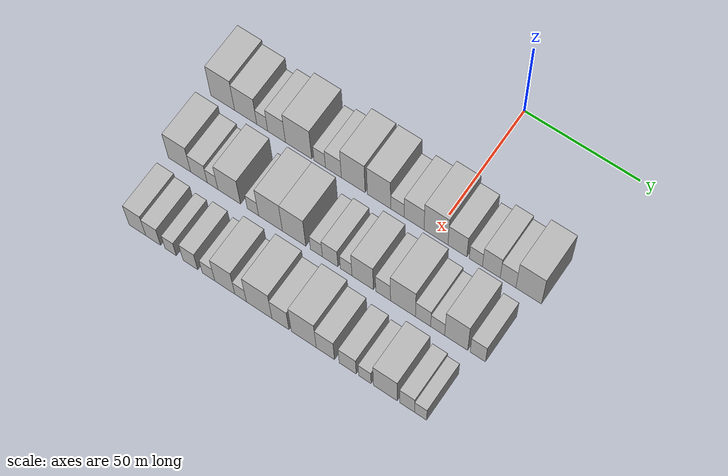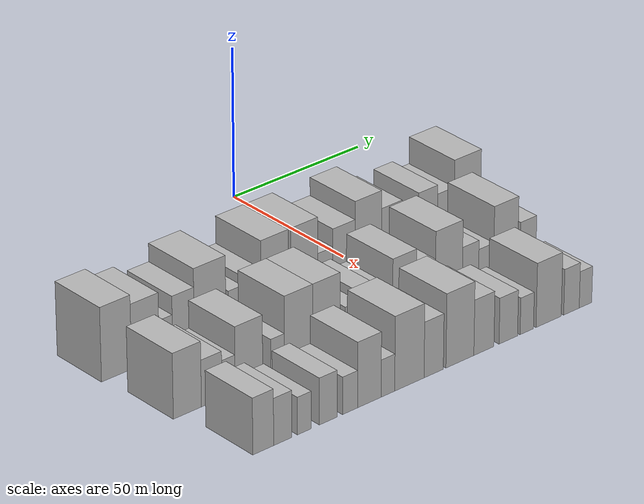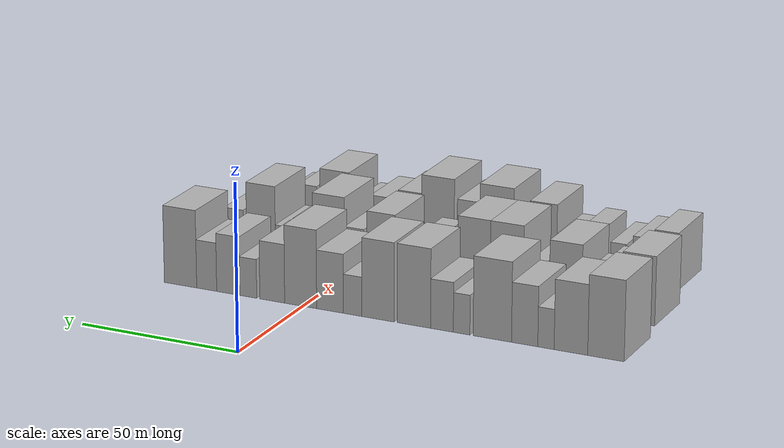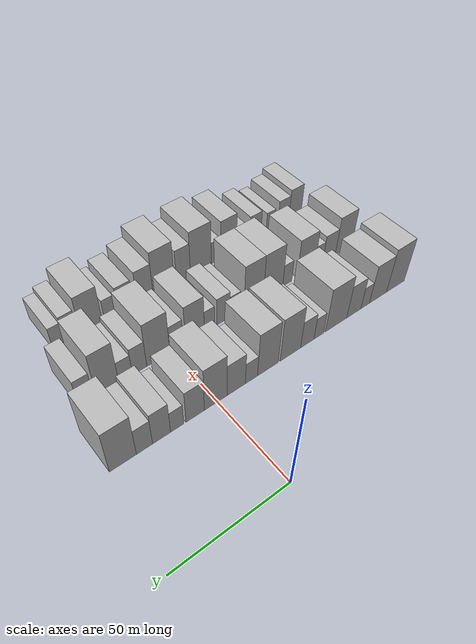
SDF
<sdf version="1.6">
 <world name="default">
  <model name="building_25">
   <static>1</static>
   <pose>50.0000 -94.0179 0 0.000000 0.000000 0.000000</pose>
   <link name="link">
    <pose>0 0 12.00 0 0 0</pose>
    <collision name="collision"><geometry><box><size>20.0000 10.8684 24.0000</size></box></geometry></collision>
    <visual name="visual">
     <cast_shadows>0</cast_shadows>
     <geometry><box><size>20.0000 10.8684 24.0000</size></box></geometry>
     <material>
      <script>
       <uri>model://HANNAS_wall/materials/scripts</uri>
       <uri>model://HANNAS_wall/materials/textures</uri>
       <name>vrc/HANNAS_wall</name>
      </script>
     </material>
    </visual>
   </link>
  </model>
  <model name="building_26">
   <static>1</static>
   <pose>50.0000 -83.5271 0 0.000000 0.000000 0.000000</pose>
   <link name="link">
    <pose>0 0 10.50 0 0 0</pose>
    <collision name="collision"><geometry><box><size>20.0000 10.1133 21.0000</size></box></geometry></collision>
    <visual name="visual">
     <cast_shadows>0</cast_shadows>
     <geometry><box><size>20.0000 10.1133 21.0000</size></box></geometry>
     <material>
      <script>
       <uri>model://HANNAS_wall/materials/scripts</uri>
       <uri>model://HANNAS_wall/materials/textures</uri>
       <name>vrc/HANNAS_wall</name>
      </script>
     </material>
    </visual>
   </link>
  </model>
  <model name="building_27">
   <static>1</static>
   <pose>50.0000 -75.9997 0 0.000000 0.000000 0.000000</pose>
   <link name="link">
    <pose>0 0 6.00 0 0 0</pose>
    <collision name="collision"><geometry><box><size>20.0000 4.9413 12.0000</size></box></geometry></collision>
    <visual name="visual">
     <cast_shadows>0</cast_shadows>
     <geometry><box><size>20.0000 4.9413 12.0000</size></box></geometry>
     <material>
      <script>
       <uri>model://HANNAS_wall/materials/scripts</uri>
       <uri>model://HANNAS_wall/materials/textures</uri>
       <name>vrc/HANNAS_wall</name>
      </script>
     </material>
    </visual>
   </link>
  </model>
  <model name="building_28">
   <static>1</static>
   <pose>50.0000 -69.5261 0 0.000000 0.000000 0.000000</pose>
   <link name="link">
    <pose>0 0 9.00 0 0 0</pose>
    <collision name="collision"><geometry><box><size>20.0000 8.0060 18.0000</size></box></geometry></collision>
    <visual name="visual">
     <cast_shadows>0</cast_shadows>
     <geometry><box><size>20.0000 8.0060 18.0000</size></box></geometry>
     <material>
      <script>
       <uri>model://HANNAS_wall/materials/scripts</uri>
       <uri>model://HANNAS_wall/materials/textures</uri>
       <name>vrc/HANNAS_wall</name>
      </script>
     </material>
    </visual>
   </link>
  </model>
  <model name="building_29">
   <static>1</static>
   <pose>50.0000 -59.6290 0 0.000000 0.000000 0.000000</pose>
   <link name="link">
    <pose>0 0 12.00 0 0 0</pose>
    <collision name="collision"><geometry><box><size>20.0000 11.7882 24.0000</size></box></geometry></collision>
    <visual name="visual">
     <cast_shadows>0</cast_shadows>
     <geometry><box><size>20.0000 11.7882 24.0000</size></box></geometry>
     <material>
      <script>
       <uri>model://HANNAS_wall/materials/scripts</uri>
       <uri>model://HANNAS_wall/materials/textures</uri>
       <name>vrc/HANNAS_wall</name>
      </script>
     </material>
    </visual>
   </link>
  </model>
  <model name="building_30">
   <static>1</static>
   <pose>50.0000 -50.1705 0 0.000000 0.000000 0.000000</pose>
   <link name="link">
    <pose>0 0 6.00 0 0 0</pose>
    <collision name="collision"><geometry><box><size>20.0000 5.1288 12.0000</size></box></geometry></collision>
    <visual name="visual">
     <cast_shadows>0</cast_shadows>
     <geometry><box><size>20.0000 5.1288 12.0000</size></box></geometry>
     <material>
      <script>
       <uri>model://HANNAS_wall/materials/scripts</uri>
       <uri>model://HANNAS_wall/materials/textures</uri>
       <name>vrc/HANNAS_wall</name>
      </script>
     </material>
    </visual>
   </link>
  </model>
  <model name="building_31">
   <static>1</static>
   <pose>50.0000 -44.0723 0 0.000000 0.000000 0.000000</pose>
   <link name="link">
    <pose>0 0 7.50 0 0 0</pose>
    <collision name="collision"><geometry><box><size>20.0000 7.0677 15.0000</size></box></geometry></collision>
    <visual name="visual">
     <cast_shadows>0</cast_shadows>
     <geometry><box><size>20.0000 7.0677 15.0000</size></box></geometry>
     <material>
      <script>
       <uri>model://HANNAS_wall/materials/scripts</uri>
       <uri>model://HANNAS_wall/materials/textures</uri>
       <name>vrc/HANNAS_wall</name>
      </script>
     </material>
    </visual>
   </link>
  </model>
  <model name="building_32">
   <static>1</static>
   <pose>50.0000 -35.3034 0 0.000000 0.000000 0.000000</pose>
   <link name="link">
    <pose>0 0 12.00 0 0 0</pose>
    <collision name="collision"><geometry><box><size>20.0000 10.4701 24.0000</size></box></geometry></collision>
    <visual name="visual">
     <cast_shadows>0</cast_shadows>
     <geometry><box><size>20.0000 10.4701 24.0000</size></box></geometry>
     <material>
      <script>
       <uri>model://HANNAS_wall/materials/scripts</uri>
       <uri>model://HANNAS_wall/materials/textures</uri>
       <name>vrc/HANNAS_wall</name>
      </script>
     </material>
    </visual>
   </link>
  </model>
  <model name="building_33">
   <static>1</static>
   <pose>50.0000 -23.9722 0 0.000000 0.000000 0.000000</pose>
   <link name="link">
    <pose>0 0 12.00 0 0 0</pose>
    <collision name="collision"><geometry><box><size>20.0000 10.1921 24.0000</size></box></geometry></collision>
    <visual name="visual">
     <cast_shadows>0</cast_shadows>
     <geometry><box><size>20.0000 10.1921 24.0000</size></box></geometry>
     <material>
      <script>
       <uri>model://HANNAS_wall/materials/scripts</uri>
       <uri>model://HANNAS_wall/materials/textures</uri>
       <name>vrc/HANNAS_wall</name>
      </script>
     </material>
    </visual>
   </link>
  </model>
  <model name="building_34">
   <static>1</static>
   <pose>50.0000 -15.9255 0 0.000000 0.000000 0.000000</pose>
   <link name="link">
    <pose>0 0 6.00 0 0 0</pose>
    <collision name="collision"><geometry><box><size>20.0000 5.9014 12.0000</size></box></geometry></collision>
    <visual name="visual">
     <cast_shadows>0</cast_shadows>
     <geometry><box><size>20.0000 5.9014 12.0000</size></box></geometry>
     <material>
      <script>
       <uri>model://HANNAS_wall/materials/scripts</uri>
       <uri>model://HANNAS_wall/materials/textures</uri>
       <name>vrc/HANNAS_wall</name>
      </script>
     </material>
    </visual>
   </link>
  </model>
  <model name="building_35">
   <static>1</static>
   <pose>50.0000 -8.6745 0 0.000000 0.000000 0.000000</pose>
   <link name="link">
    <pose>0 0 9.00 0 0 0</pose>
    <collision name="collision"><geometry><box><size>20.0000 8.6005 18.0000</size></box></geometry></collision>
    <visual name="visual">
     <cast_shadows>0</cast_shadows>
     <geometry><box><size>20.0000 8.6005 18.0000</size></box></geometry>
     <material>
      <script>
       <uri>model://HANNAS_wall/materials/scripts</uri>
       <uri>model://HANNAS_wall/materials/textures</uri>
       <name>vrc/HANNAS_wall</name>
      </script>
     </material>
    </visual>
   </link>
  </model>
  <model name="building_36">
   <static>1</static>
   <pose>50.0000 0.7981 0 0.000000 0.000000 0.000000</pose>
   <link name="link">
    <pose>0 0 12.00 0 0 0</pose>
    <collision name="collision"><geometry><box><size>20.0000 10.3448 24.0000</size></box></geometry></collision>
    <visual name="visual">
     <cast_shadows>0</cast_shadows>
     <geometry><box><size>20.0000 10.3448 24.0000</size></box></geometry>
     <material>
      <script>
       <uri>model://HANNAS_wall/materials/scripts</uri>
       <uri>model://HANNAS_wall/materials/textures</uri>
       <name>vrc/HANNAS_wall</name>
      </script>
     </material>
    </visual>
   </link>
  </model>
  <model name="building_37">
   <static>1</static>
   <pose>50.0000 10.0276 0 0.000000 0.000000 0.000000</pose>
   <link name="link">
    <pose>0 0 9.00 0 0 0</pose>
    <collision name="collision"><geometry><box><size>20.0000 8.1141 18.0000</size></box></geometry></collision>
    <visual name="visual">
     <cast_shadows>0</cast_shadows>
     <geometry><box><size>20.0000 8.1141 18.0000</size></box></geometry>
     <material>
      <script>
       <uri>model://HANNAS_wall/materials/scripts</uri>
       <uri>model://HANNAS_wall/materials/textures</uri>
       <name>vrc/HANNAS_wall</name>
      </script>
     </material>
    </visual>
   </link>
  </model>
  <model name="building_38">
   <static>1</static>
   <pose>50.0000 17.8904 0 0.000000 0.000000 0.000000</pose>
   <link name="link">
    <pose>0 0 6.00 0 0 0</pose>
    <collision name="collision"><geometry><box><size>20.0000 5.6115 12.0000</size></box></geometry></collision>
    <visual name="visual">
     <cast_shadows>0</cast_shadows>
     <geometry><box><size>20.0000 5.6115 12.0000</size></box></geometry>
     <material>
      <script>
       <uri>model://HANNAS_wall/materials/scripts</uri>
       <uri>model://HANNAS_wall/materials/textures</uri>
       <name>vrc/HANNAS_wall</name>
      </script>
     </material>
    </visual>
   </link>
  </model>
  <model name="building_39">
   <static>1</static>
   <pose>50.0000 24.4787 0 0.000000 0.000000 0.000000</pose>
   <link name="link">
    <pose>0 0 9.00 0 0 0</pose>
    <collision name="collision"><geometry><box><size>20.0000 7.5652 18.0000</size></box></geometry></collision>
    <visual name="visual">
     <cast_shadows>0</cast_shadows>
     <geometry><box><size>20.0000 7.5652 18.0000</size></box></geometry>
     <material>
      <script>
       <uri>model://HANNAS_wall/materials/scripts</uri>
       <uri>model://HANNAS_wall/materials/textures</uri>
       <name>vrc/HANNAS_wall</name>
      </script>
     </material>
    </visual>
   </link>
  </model>
  <model name="building_40">
   <static>1</static>
   <pose>50.0000 31.5845 0 0.000000 0.000000 0.000000</pose>
   <link name="link">
    <pose>0 0 7.50 0 0 0</pose>
    <collision name="collision"><geometry><box><size>20.0000 6.6463 15.0000</size></box></geometry></collision>
    <visual name="visual">
     <cast_shadows>0</cast_shadows>
     <geometry><box><size>20.0000 6.6463 15.0000</size></box></geometry>
     <material>
      <script>
       <uri>model://HANNAS_wall/materials/scripts</uri>
       <uri>model://HANNAS_wall/materials/textures</uri>
       <name>vrc/HANNAS_wall</name>
      </script>
     </material>
    </visual>
   </link>
  </model>
  <model name="building_41">
   <static>1</static>
   <pose>50.0000 40.3000 0 0.000000 0.000000 0.000000</pose>
   <link name="link">
    <pose>0 0 12.00 0 0 0</pose>
    <collision name="collision"><geometry><box><size>20.0000 10.7847 24.0000</size></box></geometry></collision>
    <visual name="visual">
     <cast_shadows>0</cast_shadows>
     <geometry><box><size>20.0000 10.7847 24.0000</size></box></geometry>
     <material>
      <script>
       <uri>model://HANNAS_wall/materials/scripts</uri>
       <uri>model://HANNAS_wall/materials/textures</uri>
       <name>vrc/HANNAS_wall</name>
      </script>
     </material>
    </visual>
   </link>
  </model>
  <model name="building_103">
   <static>1</static>
   <pose>79.0000 -92.2135 0 0.000000 0.000000 0.000000</pose>
   <link name="link">
    <pose>0 0 10.50 0 0 0</pose>
    <collision name="collision"><geometry><box><size>20.0000 10.1200 21.0000</size></box></geometry></collision>
    <visual name="visual">
     <cast_shadows>0</cast_shadows>
     <geometry><box><size>20.0000 10.1200 21.0000</size></box></geometry>
     <material>
      <script>
       <uri>model://HANNAS_wall/materials/scripts</uri>
       <uri>model://HANNAS_wall/materials/textures</uri>
       <name>vrc/HANNAS_wall</name>
      </script>
     </material>
    </visual>
   </link>
  </model>
  <model name="building_104">
   <static>1</static>
   <pose>79.0000 -83.4157 0 0.000000 0.000000 0.000000</pose>
   <link name="link">
    <pose>0 0 7.50 0 0 0</pose>
    <collision name="collision"><geometry><box><size>20.0000 7.4757 15.0000</size></box></geometry></collision>
    <visual name="visual">
     <cast_shadows>0</cast_shadows>
     <geometry><box><size>20.0000 7.4757 15.0000</size></box></geometry>
     <material>
      <script>
       <uri>model://HANNAS_wall/materials/scripts</uri>
       <uri>model://HANNAS_wall/materials/textures</uri>
       <name>vrc/HANNAS_wall</name>
      </script>
     </material>
    </visual>
   </link>
  </model>
  <model name="building_105">
   <static>1</static>
   <pose>79.0000 -77.2676 0 0.000000 0.000000 0.000000</pose>
   <link name="link">
    <pose>0 0 6.00 0 0 0</pose>
    <collision name="collision"><geometry><box><size>20.0000 4.8206 12.0000</size></box></geometry></collision>
    <visual name="visual">
     <cast_shadows>0</cast_shadows>
     <geometry><box><size>20.0000 4.8206 12.0000</size></box></geometry>
     <material>
      <script>
       <uri>model://HANNAS_wall/materials/scripts</uri>
       <uri>model://HANNAS_wall/materials/textures</uri>
       <name>vrc/HANNAS_wall</name>
      </script>
     </material>
    </visual>
   </link>
  </model>
  <model name="building_106">
   <static>1</static>
   <pose>79.0000 -69.7898 0 0.000000 0.000000 0.000000</pose>
   <link name="link">
    <pose>0 0 10.50 0 0 0</pose>
    <collision name="collision"><geometry><box><size>20.0000 10.1350 21.0000</size></box></geometry></collision>
    <visual name="visual">
     <cast_shadows>0</cast_shadows>
     <geometry><box><size>20.0000 10.1350 21.0000</size></box></geometry>
     <material>
      <script>
       <uri>model://HANNAS_wall/materials/scripts</uri>
       <uri>model://HANNAS_wall/materials/textures</uri>
       <name>vrc/HANNAS_wall</name>
      </script>
     </material>
    </visual>
   </link>
  </model>
  <model name="building_107">
   <static>1</static>
   <pose>79.0000 -59.1889 0 0.000000 0.000000 0.000000</pose>
   <link name="link">
    <pose>0 0 6.00 0 0 0</pose>
    <collision name="collision"><geometry><box><size>20.0000 5.0666 12.0000</size></box></geometry></collision>
    <visual name="visual">
     <cast_shadows>0</cast_shadows>
     <geometry><box><size>20.0000 5.0666 12.0000</size></box></geometry>
     <material>
      <script>
       <uri>model://HANNAS_wall/materials/scripts</uri>
       <uri>model://HANNAS_wall/materials/textures</uri>
       <name>vrc/HANNAS_wall</name>
      </script>
     </material>
    </visual>
   </link>
  </model>
  <model name="building_108">
   <static>1</static>
   <pose>79.0000 -51.3912 0 0.000000 0.000000 0.000000</pose>
   <link name="link">
    <pose>0 0 12.00 0 0 0</pose>
    <collision name="collision"><geometry><box><size>20.0000 10.5289 24.0000</size></box></geometry></collision>
    <visual name="visual">
     <cast_shadows>0</cast_shadows>
     <geometry><box><size>20.0000 10.5289 24.0000</size></box></geometry>
     <material>
      <script>
       <uri>model://HANNAS_wall/materials/scripts</uri>
       <uri>model://HANNAS_wall/materials/textures</uri>
       <name>vrc/HANNAS_wall</name>
      </script>
     </material>
    </visual>
   </link>
  </model>
  <model name="building_109">
   <static>1</static>
   <pose>79.0000 -40.9770 0 0.000000 0.000000 0.000000</pose>
   <link name="link">
    <pose>0 0 12.00 0 0 0</pose>
    <collision name="collision"><geometry><box><size>20.0000 10.2996 24.0000</size></box></geometry></collision>
    <visual name="visual">
     <cast_shadows>0</cast_shadows>
     <geometry><box><size>20.0000 10.2996 24.0000</size></box></geometry>
     <material>
      <script>
       <uri>model://HANNAS_wall/materials/scripts</uri>
       <uri>model://HANNAS_wall/materials/textures</uri>
       <name>vrc/HANNAS_wall</name>
      </script>
     </material>
    </visual>
   </link>
  </model>
  <model name="building_110">
   <static>1</static>
   <pose>79.0000 -31.1936 0 0.000000 0.000000 0.000000</pose>
   <link name="link">
    <pose>0 0 6.00 0 0 0</pose>
    <collision name="collision"><geometry><box><size>20.0000 5.2672 12.0000</size></box></geometry></collision>
    <visual name="visual">
     <cast_shadows>0</cast_shadows>
     <geometry><box><size>20.0000 5.2672 12.0000</size></box></geometry>
     <material>
      <script>
       <uri>model://HANNAS_wall/materials/scripts</uri>
       <uri>model://HANNAS_wall/materials/textures</uri>
       <name>vrc/HANNAS_wall</name>
      </script>
     </material>
    </visual>
   </link>
  </model>
  <model name="building_111">
   <static>1</static>
   <pose>79.0000 -25.1725 0 0.000000 0.000000 0.000000</pose>
   <link name="link">
    <pose>0 0 7.50 0 0 0</pose>
    <collision name="collision"><geometry><box><size>20.0000 6.7749 15.0000</size></box></geometry></collision>
    <visual name="visual">
     <cast_shadows>0</cast_shadows>
     <geometry><box><size>20.0000 6.7749 15.0000</size></box></geometry>
     <material>
      <script>
       <uri>model://HANNAS_wall/materials/scripts</uri>
       <uri>model://HANNAS_wall/materials/textures</uri>
       <name>vrc/HANNAS_wall</name>
      </script>
     </material>
    </visual>
   </link>
  </model>
  <model name="building_112">
   <static>1</static>
   <pose>79.0000 -18.2454 0 0.000000 0.000000 0.000000</pose>
   <link name="link">
    <pose>0 0 6.00 0 0 0</pose>
    <collision name="collision"><geometry><box><size>20.0000 5.0794 12.0000</size></box></geometry></collision>
    <visual name="visual">
     <cast_shadows>0</cast_shadows>
     <geometry><box><size>20.0000 5.0794 12.0000</size></box></geometry>
     <material>
      <script>
       <uri>model://HANNAS_wall/materials/scripts</uri>
       <uri>model://HANNAS_wall/materials/textures</uri>
       <name>vrc/HANNAS_wall</name>
      </script>
     </material>
    </visual>
   </link>
  </model>
  <model name="building_113">
   <static>1</static>
   <pose>79.0000 -11.0957 0 0.000000 0.000000 0.000000</pose>
   <link name="link">
    <pose>0 0 10.50 0 0 0</pose>
    <collision name="collision"><geometry><box><size>20.0000 9.2200 21.0000</size></box></geometry></collision>
    <visual name="visual">
     <cast_shadows>0</cast_shadows>
     <geometry><box><size>20.0000 9.2200 21.0000</size></box></geometry>
     <material>
      <script>
       <uri>model://HANNAS_wall/materials/scripts</uri>
       <uri>model://HANNAS_wall/materials/textures</uri>
       <name>vrc/HANNAS_wall</name>
      </script>
     </material>
    </visual>
   </link>
  </model>
  <model name="building_114">
   <static>1</static>
   <pose>79.0000 -2.3140 0 0.000000 0.000000 0.000000</pose>
   <link name="link">
    <pose>0 0 7.50 0 0 0</pose>
    <collision name="collision"><geometry><box><size>20.0000 6.3435 15.0000</size></box></geometry></collision>
    <visual name="visual">
     <cast_shadows>0</cast_shadows>
     <geometry><box><size>20.0000 6.3435 15.0000</size></box></geometry>
     <material>
      <script>
       <uri>model://HANNAS_wall/materials/scripts</uri>
       <uri>model://HANNAS_wall/materials/textures</uri>
       <name>vrc/HANNAS_wall</name>
      </script>
     </material>
    </visual>
   </link>
  </model>
  <model name="building_115">
   <static>1</static>
   <pose>79.0000 6.1742 0 0.000000 0.000000 0.000000</pose>
   <link name="link">
    <pose>0 0 12.00 0 0 0</pose>
    <collision name="collision"><geometry><box><size>20.0000 10.6329 24.0000</size></box></geometry></collision>
    <visual name="visual">
     <cast_shadows>0</cast_shadows>
     <geometry><box><size>20.0000 10.6329 24.0000</size></box></geometry>
     <material>
      <script>
       <uri>model://HANNAS_wall/materials/scripts</uri>
       <uri>model://HANNAS_wall/materials/textures</uri>
       <name>vrc/HANNAS_wall</name>
      </script>
     </material>
    </visual>
   </link>
  </model>
  <model name="building_116">
   <static>1</static>
   <pose>79.0000 14.7125 0 0.000000 0.000000 0.000000</pose>
   <link name="link">
    <pose>0 0 7.50 0 0 0</pose>
    <collision name="collision"><geometry><box><size>20.0000 6.4437 15.0000</size></box></geometry></collision>
    <visual name="visual">
     <cast_shadows>0</cast_shadows>
     <geometry><box><size>20.0000 6.4437 15.0000</size></box></geometry>
     <material>
      <script>
       <uri>model://HANNAS_wall/materials/scripts</uri>
       <uri>model://HANNAS_wall/materials/textures</uri>
       <name>vrc/HANNAS_wall</name>
      </script>
     </material>
    </visual>
   </link>
  </model>
  <model name="building_117">
   <static>1</static>
   <pose>79.0000 20.9096 0 0.000000 0.000000 0.000000</pose>
   <link name="link">
    <pose>0 0 6.00 0 0 0</pose>
    <collision name="collision"><geometry><box><size>20.0000 5.9505 12.0000</size></box></geometry></collision>
    <visual name="visual">
     <cast_shadows>0</cast_shadows>
     <geometry><box><size>20.0000 5.9505 12.0000</size></box></geometry>
     <material>
      <script>
       <uri>model://HANNAS_wall/materials/scripts</uri>
       <uri>model://HANNAS_wall/materials/textures</uri>
       <name>vrc/HANNAS_wall</name>
      </script>
     </material>
    </visual>
   </link>
  </model>
  <model name="building_118">
   <static>1</static>
   <pose>79.0000 28.7317 0 0.000000 0.000000 0.000000</pose>
   <link name="link">
    <pose>0 0 12.00 0 0 0</pose>
    <collision name="collision"><geometry><box><size>20.0000 9.6936 24.0000</size></box></geometry></collision>
    <visual name="visual">
     <cast_shadows>0</cast_shadows>
     <geometry><box><size>20.0000 9.6936 24.0000</size></box></geometry>
     <material>
      <script>
       <uri>model://HANNAS_wall/materials/scripts</uri>
       <uri>model://HANNAS_wall/materials/textures</uri>
       <name>vrc/HANNAS_wall</name>
      </script>
     </material>
    </visual>
   </link>
  </model>
  <model name="building_119">
   <static>1</static>
   <pose>79.0000 37.7924 0 0.000000 0.000000 0.000000</pose>
   <link name="link">
    <pose>0 0 7.50 0 0 0</pose>
    <collision name="collision"><geometry><box><size>20.0000 6.4278 15.0000</size></box></geometry></collision>
    <visual name="visual">
     <cast_shadows>0</cast_shadows>
     <geometry><box><size>20.0000 6.4278 15.0000</size></box></geometry>
     <material>
      <script>
       <uri>model://HANNAS_wall/materials/scripts</uri>
       <uri>model://HANNAS_wall/materials/textures</uri>
       <name>vrc/HANNAS_wall</name>
      </script>
     </material>
    </visual>
   </link>
  </model>
  <model name="building_178">
   <static>1</static>
   <pose>108.0000 -89.3599 0 0.000000 0.000000 0.000000</pose>
   <link name="link">
    <pose>0 0 9.00 0 0 0</pose>
    <collision name="collision"><geometry><box><size>20.0000 7.5112 18.0000</size></box></geometry></collision>
    <visual name="visual">
     <cast_shadows>0</cast_shadows>
     <geometry><box><size>20.0000 7.5112 18.0000</size></box></geometry>
     <material>
      <script>
       <uri>model://HANNAS_wall/materials/scripts</uri>
       <uri>model://HANNAS_wall/materials/textures</uri>
       <name>vrc/HANNAS_wall</name>
      </script>
     </material>
    </visual>
   </link>
  </model>
  <model name="building_179">
   <static>1</static>
   <pose>108.0000 -82.2894 0 0.000000 0.000000 0.000000</pose>
   <link name="link">
    <pose>0 0 7.50 0 0 0</pose>
    <collision name="collision"><geometry><box><size>20.0000 6.6297 15.0000</size></box></geometry></collision>
    <visual name="visual">
     <cast_shadows>0</cast_shadows>
     <geometry><box><size>20.0000 6.6297 15.0000</size></box></geometry>
     <material>
      <script>
       <uri>model://HANNAS_wall/materials/scripts</uri>
       <uri>model://HANNAS_wall/materials/textures</uri>
       <name>vrc/HANNAS_wall</name>
      </script>
     </material>
    </visual>
   </link>
  </model>
  <model name="building_180">
   <static>1</static>
   <pose>108.0000 -74.4618 0 0.000000 0.000000 0.000000</pose>
   <link name="link">
    <pose>0 0 6.00 0 0 0</pose>
    <collision name="collision"><geometry><box><size>20.0000 5.0254 12.0000</size></box></geometry></collision>
    <visual name="visual">
     <cast_shadows>0</cast_shadows>
     <geometry><box><size>20.0000 5.0254 12.0000</size></box></geometry>
     <material>
      <script>
       <uri>model://HANNAS_wall/materials/scripts</uri>
       <uri>model://HANNAS_wall/materials/textures</uri>
       <name>vrc/HANNAS_wall</name>
      </script>
     </material>
    </visual>
   </link>
  </model>
  <model name="building_181">
   <static>1</static>
   <pose>108.0000 -65.6889 0 0.000000 0.000000 0.000000</pose>
   <link name="link">
    <pose>0 0 7.50 0 0 0</pose>
    <collision name="collision"><geometry><box><size>20.0000 6.5204 15.0000</size></box></geometry></collision>
    <visual name="visual">
     <cast_shadows>0</cast_shadows>
     <geometry><box><size>20.0000 6.5204 15.0000</size></box></geometry>
     <material>
      <script>
       <uri>model://HANNAS_wall/materials/scripts</uri>
       <uri>model://HANNAS_wall/materials/textures</uri>
       <name>vrc/HANNAS_wall</name>
      </script>
     </material>
    </visual>
   </link>
  </model>
  <model name="building_182">
   <static>1</static>
   <pose>108.0000 -57.6493 0 0.000000 0.000000 0.000000</pose>
   <link name="link">
    <pose>0 0 6.00 0 0 0</pose>
    <collision name="collision"><geometry><box><size>20.0000 5.5589 12.0000</size></box></geometry></collision>
    <visual name="visual">
     <cast_shadows>0</cast_shadows>
     <geometry><box><size>20.0000 5.5589 12.0000</size></box></geometry>
     <material>
      <script>
       <uri>model://HANNAS_wall/materials/scripts</uri>
       <uri>model://HANNAS_wall/materials/textures</uri>
       <name>vrc/HANNAS_wall</name>
      </script>
     </material>
    </visual>
   </link>
  </model>
  <model name="building_183">
   <static>1</static>
   <pose>108.0000 -50.4737 0 0.000000 0.000000 0.000000</pose>
   <link name="link">
    <pose>0 0 10.50 0 0 0</pose>
    <collision name="collision"><geometry><box><size>20.0000 8.7923 21.0000</size></box></geometry></collision>
    <visual name="visual">
     <cast_shadows>0</cast_shadows>
     <geometry><box><size>20.0000 8.7923 21.0000</size></box></geometry>
     <material>
      <script>
       <uri>model://HANNAS_wall/materials/scripts</uri>
       <uri>model://HANNAS_wall/materials/textures</uri>
       <name>vrc/HANNAS_wall</name>
      </script>
     </material>
    </visual>
   </link>
  </model>
  <model name="building_184">
   <static>1</static>
   <pose>108.0000 -43.5324 0 0.000000 0.000000 0.000000</pose>
   <link name="link">
    <pose>0 0 6.00 0 0 0</pose>
    <collision name="collision"><geometry><box><size>20.0000 5.0905 12.0000</size></box></geometry></collision>
    <visual name="visual">
     <cast_shadows>0</cast_shadows>
     <geometry><box><size>20.0000 5.0905 12.0000</size></box></geometry>
     <material>
      <script>
       <uri>model://HANNAS_wall/materials/scripts</uri>
       <uri>model://HANNAS_wall/materials/textures</uri>
       <name>vrc/HANNAS_wall</name>
      </script>
     </material>
    </visual>
   </link>
  </model>
  <model name="building_185">
   <static>1</static>
   <pose>108.0000 -35.4392 0 0.000000 0.000000 0.000000</pose>
   <link name="link">
    <pose>0 0 12.00 0 0 0</pose>
    <collision name="collision"><geometry><box><size>20.0000 11.0958 24.0000</size></box></geometry></collision>
    <visual name="visual">
     <cast_shadows>0</cast_shadows>
     <geometry><box><size>20.0000 11.0958 24.0000</size></box></geometry>
     <material>
      <script>
       <uri>model://HANNAS_wall/materials/scripts</uri>
       <uri>model://HANNAS_wall/materials/textures</uri>
       <name>vrc/HANNAS_wall</name>
      </script>
     </material>
    </visual>
   </link>
  </model>
  <model name="building_186">
   <static>1</static>
   <pose>108.0000 -26.2146 0 0.000000 0.000000 0.000000</pose>
   <link name="link">
    <pose>0 0 9.00 0 0 0</pose>
    <collision name="collision"><geometry><box><size>20.0000 7.3534 18.0000</size></box></geometry></collision>
    <visual name="visual">
     <cast_shadows>0</cast_shadows>
     <geometry><box><size>20.0000 7.3534 18.0000</size></box></geometry>
     <material>
      <script>
       <uri>model://HANNAS_wall/materials/scripts</uri>
       <uri>model://HANNAS_wall/materials/textures</uri>
       <name>vrc/HANNAS_wall</name>
      </script>
     </material>
    </visual>
   </link>
  </model>
  <model name="building_187">
   <static>1</static>
   <pose>108.0000 -16.1700 0 0.000000 0.000000 0.000000</pose>
   <link name="link">
    <pose>0 0 12.00 0 0 0</pose>
    <collision name="collision"><geometry><box><size>20.0000 10.7357 24.0000</size></box></geometry></collision>
    <visual name="visual">
     <cast_shadows>0</cast_shadows>
     <geometry><box><size>20.0000 10.7357 24.0000</size></box></geometry>
     <material>
      <script>
       <uri>model://HANNAS_wall/materials/scripts</uri>
       <uri>model://HANNAS_wall/materials/textures</uri>
       <name>vrc/HANNAS_wall</name>
      </script>
     </material>
    </visual>
   </link>
  </model>
  <model name="building_188">
   <static>1</static>
   <pose>108.0000 -6.9068 0 0.000000 0.000000 0.000000</pose>
   <link name="link">
    <pose>0 0 9.00 0 0 0</pose>
    <collision name="collision"><geometry><box><size>20.0000 7.7908 18.0000</size></box></geometry></collision>
    <visual name="visual">
     <cast_shadows>0</cast_shadows>
     <geometry><box><size>20.0000 7.7908 18.0000</size></box></geometry>
     <material>
      <script>
       <uri>model://HANNAS_wall/materials/scripts</uri>
       <uri>model://HANNAS_wall/materials/textures</uri>
       <name>vrc/HANNAS_wall</name>
      </script>
     </material>
    </visual>
   </link>
  </model>
  <model name="building_189">
   <static>1</static>
   <pose>108.0000 2.6083 0 0.000000 0.000000 0.000000</pose>
   <link name="link">
    <pose>0 0 7.50 0 0 0</pose>
    <collision name="collision"><geometry><box><size>20.0000 7.2395 15.0000</size></box></geometry></collision>
    <visual name="visual">
     <cast_shadows>0</cast_shadows>
     <geometry><box><size>20.0000 7.2395 15.0000</size></box></geometry>
     <material>
      <script>
       <uri>model://HANNAS_wall/materials/scripts</uri>
       <uri>model://HANNAS_wall/materials/textures</uri>
       <name>vrc/HANNAS_wall</name>
      </script>
     </material>
    </visual>
   </link>
  </model>
  <model name="building_190">
   <static>1</static>
   <pose>108.0000 9.8619 0 0.000000 0.000000 0.000000</pose>
   <link name="link">
    <pose>0 0 6.00 0 0 0</pose>
    <collision name="collision"><geometry><box><size>20.0000 5.2677 12.0000</size></box></geometry></collision>
    <visual name="visual">
     <cast_shadows>0</cast_shadows>
     <geometry><box><size>20.0000 5.2677 12.0000</size></box></geometry>
     <material>
      <script>
       <uri>model://HANNAS_wall/materials/scripts</uri>
       <uri>model://HANNAS_wall/materials/textures</uri>
       <name>vrc/HANNAS_wall</name>
      </script>
     </material>
    </visual>
   </link>
  </model>
  <model name="building_191">
   <static>1</static>
   <pose>108.0000 18.4906 0 0.000000 0.000000 0.000000</pose>
   <link name="link">
    <pose>0 0 10.50 0 0 0</pose>
    <collision name="collision"><geometry><box><size>20.0000 9.9896 21.0000</size></box></geometry></collision>
    <visual name="visual">
     <cast_shadows>0</cast_shadows>
     <geometry><box><size>20.0000 9.9896 21.0000</size></box></geometry>
     <material>
      <script>
       <uri>model://HANNAS_wall/materials/scripts</uri>
       <uri>model://HANNAS_wall/materials/textures</uri>
       <name>vrc/HANNAS_wall</name>
      </script>
     </material>
    </visual>
   </link>
  </model>
  <model name="building_192">
   <static>1</static>
   <pose>108.0000 27.5947 0 0.000000 0.000000 0.000000</pose>
   <link name="link">
    <pose>0 0 7.50 0 0 0</pose>
    <collision name="collision"><geometry><box><size>20.0000 6.2185 15.0000</size></box></geometry></collision>
    <visual name="visual">
     <cast_shadows>0</cast_shadows>
     <geometry><box><size>20.0000 6.2185 15.0000</size></box></geometry>
     <material>
      <script>
       <uri>model://HANNAS_wall/materials/scripts</uri>
       <uri>model://HANNAS_wall/materials/textures</uri>
       <name>vrc/HANNAS_wall</name>
      </script>
     </material>
    </visual>
   </link>
  </model>
  <model name="building_193">
   <static>1</static>
   <pose>108.0000 33.2104 0 0.000000 0.000000 0.000000</pose>
   <link name="link">
    <pose>0 0 6.00 0 0 0</pose>
    <collision name="collision"><geometry><box><size>20.0000 5.0129 12.0000</size></box></geometry></collision>
    <visual name="visual">
     <cast_shadows>0</cast_shadows>
     <geometry><box><size>20.0000 5.0129 12.0000</size></box></geometry>
     <material>
      <script>
       <uri>model://HANNAS_wall/materials/scripts</uri>
       <uri>model://HANNAS_wall/materials/textures</uri>
       <name>vrc/HANNAS_wall</name>
      </script>
     </material>
    </visual>
   </link>
  </model>
 </world>
</sdf>
